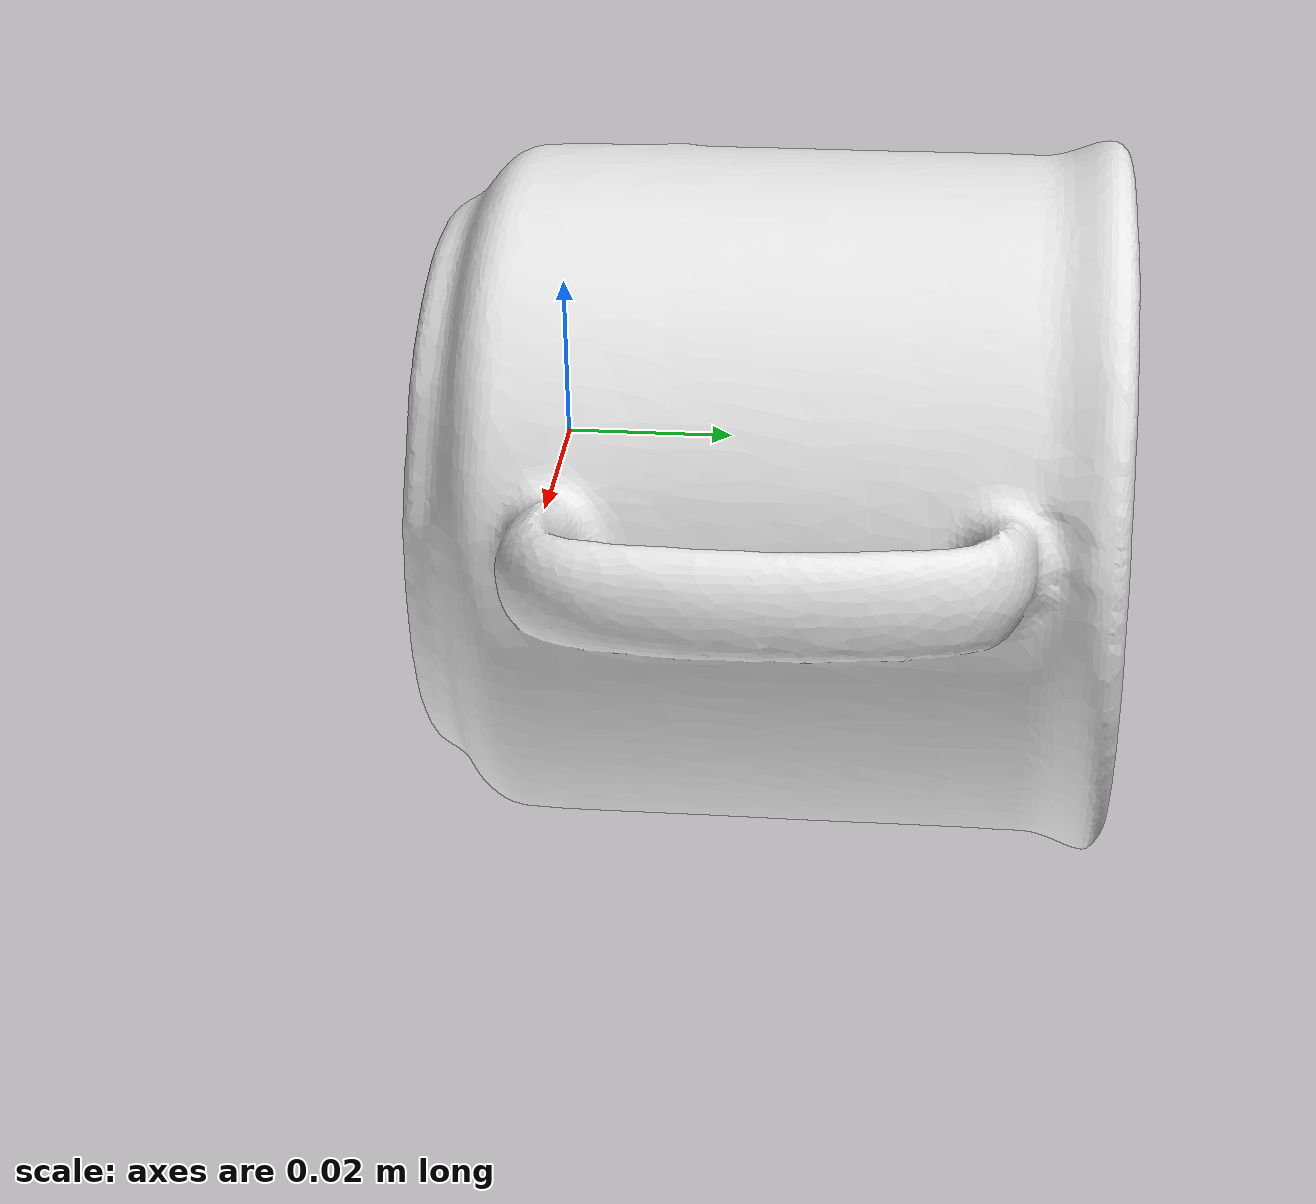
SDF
<?xml version='1.0'?>
<sdf version="1.4">
  <model name="WhiteCup">
    <static>false</static>
    <link name="link">
      <inertial>
        <pose>0.007130803144278097 0.028015014479061722 -0.003431033077104351 -3.0556399407374952 1.2673767271953111 0.043410507356483684</pose>
        <mass>0.027444223037796426</mass>
        <inertia>
          <ixx>5.151940965634997e-05</ixx>
          <ixy>-9.830903515155126e-21</ixy>
          <ixz>2.0281533069518832e-21</ixz>
          <iyy>4.6520145944818434e-05</iyy>
          <iyz>-2.3881026027804943e-22</iyz>
          <izz>4.2945423581632175e-05</izz>
        </inertia>
      </inertial>
      <collision name="collision">
        <geometry>
          <mesh>
            <!-- Use a downsampled mesh for collisions -->
            <uri>model:///WhiteCup/WhiteCup_250_collision.obj</uri>
	        </mesh>
        </geometry>
        <surface>
      </surface>
      </collision>
      <visual name="visual">
        <geometry>
          <mesh>
            <uri>model:///WhiteCup/WhiteCup_25k_tex.obj</uri>
	        </mesh>
        </geometry>
        <material>
          <script>
            <uri>model:///WhiteCup/WhiteCup.material</uri>
            <name>WhiteCup</name>
          </script>
        </material>
      </visual>
    </link>
  </model>
</sdf>
